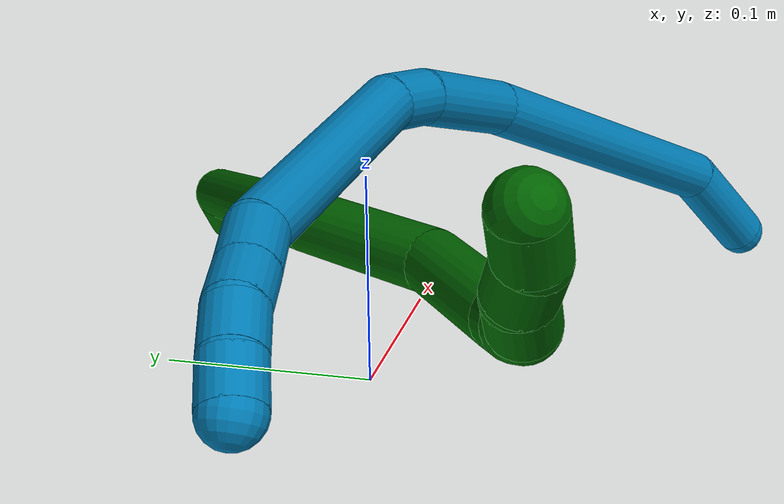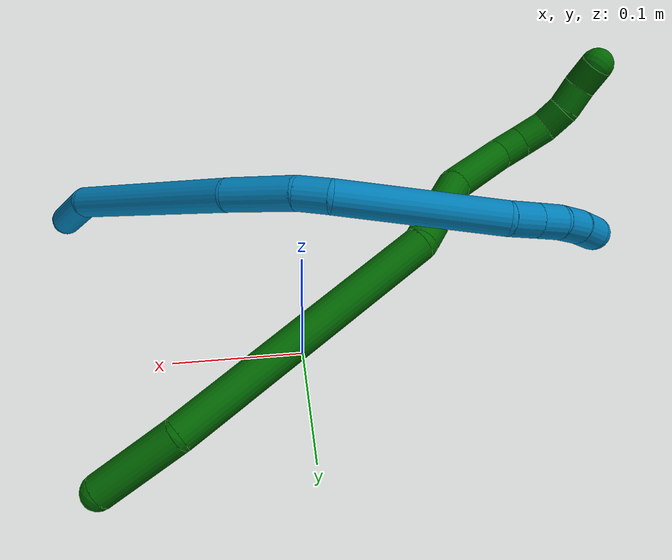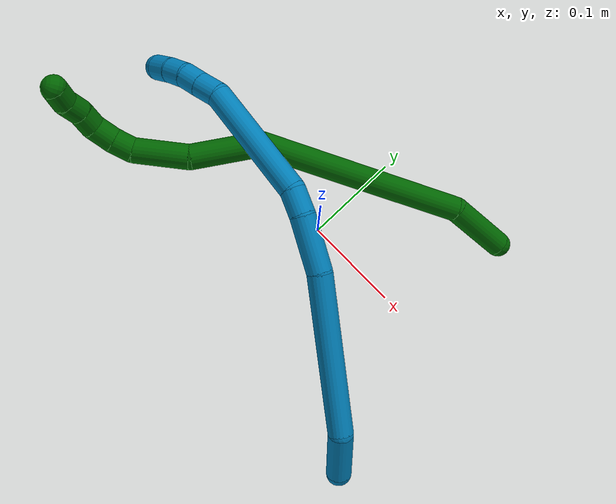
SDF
<sdf version="1.7">
 <world name="default">
  <model name="6">
   <static>0</static>
   <link name="6">
    <collision name="collision-cylinder-e_1_1_4">
     <pose>-0.009947 0.005174 0.030381 -0.16869 -0.312219 0.026612</pose>
     <geometry><cylinder><radius>0.0125</radius><length>0.064768</length></cylinder></geometry>
     <surface>
      <friction><ode><mu>1.16</mu><mu2>1.16</mu2><slip1>0</slip1><slip2>0</slip2></ode></friction>
      <contact><ode><kp>1e+06</kp><kd>1</kd><max_vel>0</max_vel><min_depth>0.001</min_depth></ode></contact>
     </surface>
    </collision>
    <visual name="visual-cylinder-e_1_1_4">
     <pose>-0.009947 0.005174 0.030381 -0.16869 -0.312219 0.026612</pose>
     <geometry><cylinder><radius>0.0125</radius><length>0.064768</length></cylinder></geometry>
     <material><ambient>0 0.392157 0.003922 1</ambient></material>
    </visual>
    <collision name="collision-cylinder-e_2_4_5">
     <pose>-0.049543 -0.012781 0.157176 0.235444 -0.290562 -0.034605</pose>
     <geometry><cylinder><radius>0.0125</radius><length>0.206976</length></cylinder></geometry>
     <surface>
      <friction><ode><mu>1.16</mu><mu2>1.16</mu2><slip1>0</slip1><slip2>0</slip2></ode></friction>
      <contact><ode><kp>1e+06</kp><kd>1</kd><max_vel>0</max_vel><min_depth>0.001</min_depth></ode></contact>
     </surface>
    </collision>
    <visual name="visual-cylinder-e_2_4_5">
     <pose>-0.049543 -0.012781 0.157176 0.235444 -0.290562 -0.034605</pose>
     <geometry><cylinder><radius>0.0125</radius><length>0.206976</length></cylinder></geometry>
     <material><ambient>0 0.392157 0.003922 1</ambient></material>
    </visual>
    <collision name="collision-cylinder-e_3_5_6">
     <pose>-0.079105 -0.05707 0.281297 0.652224 0.002487 0.000841</pose>
     <geometry><cylinder><radius>0.0125</radius><length>0.069724</length></cylinder></geometry>
     <surface>
      <friction><ode><mu>1.16</mu><mu2>1.16</mu2><slip1>0</slip1><slip2>0</slip2></ode></friction>
      <contact><ode><kp>1e+06</kp><kd>1</kd><max_vel>0</max_vel><min_depth>0.001</min_depth></ode></contact>
     </surface>
    </collision>
    <visual name="visual-cylinder-e_3_5_6">
     <pose>-0.079105 -0.05707 0.281297 0.652224 0.002487 0.000841</pose>
     <geometry><cylinder><radius>0.0125</radius><length>0.069724</length></cylinder></geometry>
     <material><ambient>0 0.392157 0.003922 1</ambient></material>
    </visual>
    <collision name="collision-cylinder-e_4_6_7">
     <pose>-0.087524 -0.091887 0.331395 0.547673 -0.313594 -0.088757</pose>
     <geometry><cylinder><radius>0.0125</radius><length>0.055147</length></cylinder></geometry>
     <surface>
      <friction><ode><mu>1.16</mu><mu2>1.16</mu2><slip1>0</slip1><slip2>0</slip2></ode></friction>
      <contact><ode><kp>1e+06</kp><kd>1</kd><max_vel>0</max_vel><min_depth>0.001</min_depth></ode></contact>
     </surface>
    </collision>
    <visual name="visual-cylinder-e_4_6_7">
     <pose>-0.087524 -0.091887 0.331395 0.547673 -0.313594 -0.088757</pose>
     <geometry><cylinder><radius>0.0125</radius><length>0.055147</length></cylinder></geometry>
     <material><ambient>0 0.392157 0.003922 1</ambient></material>
    </visual>
    <collision name="collision-cylinder-e_5_7_8">
     <pose>-0.100118 -0.106758 0.363324 0.126633 -0.402118 -0.025843</pose>
     <geometry><cylinder><radius>0.0125</radius><length>0.020892</length></cylinder></geometry>
     <surface>
      <friction><ode><mu>1.16</mu><mu2>1.16</mu2><slip1>0</slip1><slip2>0</slip2></ode></friction>
      <contact><ode><kp>1e+06</kp><kd>1</kd><max_vel>0</max_vel><min_depth>0.001</min_depth></ode></contact>
     </surface>
    </collision>
    <visual name="visual-cylinder-e_5_7_8">
     <pose>-0.100118 -0.106758 0.363324 0.126633 -0.402118 -0.025843</pose>
     <geometry><cylinder><radius>0.0125</radius><length>0.020892</length></cylinder></geometry>
     <material><ambient>0 0.392157 0.003922 1</ambient></material>
    </visual>
    <collision name="collision-cylinder-e_6_8_9">
     <pose>-0.108448 -0.107298 0.383084 -0.065877 -0.392423 0.013099</pose>
     <geometry><cylinder><radius>0.0125</radius><length>0.022179</length></cylinder></geometry>
     <surface>
      <friction><ode><mu>1.16</mu><mu2>1.16</mu2><slip1>0</slip1><slip2>0</slip2></ode></friction>
      <contact><ode><kp>1e+06</kp><kd>1</kd><max_vel>0</max_vel><min_depth>0.001</min_depth></ode></contact>
     </surface>
    </collision>
    <visual name="visual-cylinder-e_6_8_9">
     <pose>-0.108448 -0.107298 0.383084 -0.065877 -0.392423 0.013099</pose>
     <geometry><cylinder><radius>0.0125</radius><length>0.022179</length></cylinder></geometry>
     <material><ambient>0 0.392157 0.003922 1</ambient></material>
    </visual>
    <collision name="collision-cylinder-e_7_9_10">
     <pose>-0.114312 -0.101849 0.402046 -0.500101 -0.161587 0.041353</pose>
     <geometry><cylinder><radius>0.0125</radius><length>0.020177</length></cylinder></geometry>
     <surface>
      <friction><ode><mu>1.16</mu><mu2>1.16</mu2><slip1>0</slip1><slip2>0</slip2></ode></friction>
      <contact><ode><kp>1e+06</kp><kd>1</kd><max_vel>0</max_vel><min_depth>0.001</min_depth></ode></contact>
     </surface>
    </collision>
    <visual name="visual-cylinder-e_7_9_10">
     <pose>-0.114312 -0.101849 0.402046 -0.500101 -0.161587 0.041353</pose>
     <geometry><cylinder><radius>0.0125</radius><length>0.020177</length></cylinder></geometry>
     <material><ambient>0 0.392157 0.003922 1</ambient></material>
    </visual>
    <collision name="collision-cylinder-e_8_10_11">
     <pose>-0.115275 -0.093678 0.420215 -0.345618 0.065752 -0.011481</pose>
     <geometry><cylinder><radius>0.0125</radius><length>0.020093</length></cylinder></geometry>
     <surface>
      <friction><ode><mu>1.16</mu><mu2>1.16</mu2><slip1>0</slip1><slip2>0</slip2></ode></friction>
      <contact><ode><kp>1e+06</kp><kd>1</kd><max_vel>0</max_vel><min_depth>0.001</min_depth></ode></contact>
     </surface>
    </collision>
    <visual name="visual-cylinder-e_8_10_11">
     <pose>-0.115275 -0.093678 0.420215 -0.345618 0.065752 -0.011481</pose>
     <geometry><cylinder><radius>0.0125</radius><length>0.020093</length></cylinder></geometry>
     <material><ambient>0 0.392157 0.003922 1</ambient></material>
    </visual>
    <collision name="collision-cylinder-e_9_11_2">
     <pose>-0.11438 -0.084208 0.437615 -0.651362 0.023425 -0.007911</pose>
     <geometry><cylinder><radius>0.0125</radius><length>0.020044</length></cylinder></geometry>
     <surface>
      <friction><ode><mu>1.16</mu><mu2>1.16</mu2><slip1>0</slip1><slip2>0</slip2></ode></friction>
      <contact><ode><kp>1e+06</kp><kd>1</kd><max_vel>0</max_vel><min_depth>0.001</min_depth></ode></contact>
     </surface>
    </collision>
    <visual name="visual-cylinder-e_9_11_2">
     <pose>-0.11438 -0.084208 0.437615 -0.651362 0.023425 -0.007911</pose>
     <geometry><cylinder><radius>0.0125</radius><length>0.020044</length></cylinder></geometry>
     <material><ambient>0 0.392157 0.003922 1</ambient></material>
    </visual>
    <collision name="collision-sphere-2">
     <pose>-0.114145 -0.078133 0.445583 0 -0 0</pose>
     <geometry><sphere><radius>0.0125</radius></sphere></geometry>
     <surface>
      <friction><ode><mu>1.16</mu><mu2>1.16</mu2><slip1>0</slip1><slip2>0</slip2></ode></friction>
      <contact><ode><kp>1e+06</kp><kd>1</kd><max_vel>0</max_vel><min_depth>0.001</min_depth></ode></contact>
     </surface>
    </collision>
    <visual name="visual-sphere-2">
     <pose>-0.114145 -0.078133 0.445583 0 -0 0</pose>
     <geometry><sphere><radius>0.0125</radius></sphere></geometry>
     <material><ambient>0 0.392157 0.003922 1</ambient></material>
    </visual>
    <collision name="collision-sphere-11">
     <pose>-0.114614 -0.090282 0.429647 0 -0 0</pose>
     <geometry><sphere><radius>0.0125</radius></sphere></geometry>
     <surface>
      <friction><ode><mu>1.16</mu><mu2>1.16</mu2><slip1>0</slip1><slip2>0</slip2></ode></friction>
      <contact><ode><kp>1e+06</kp><kd>1</kd><max_vel>0</max_vel><min_depth>0.001</min_depth></ode></contact>
     </surface>
    </collision>
    <visual name="visual-sphere-11">
     <pose>-0.114614 -0.090282 0.429647 0 -0 0</pose>
     <geometry><sphere><radius>0.0125</radius></sphere></geometry>
     <material><ambient>0 0.392157 0.003922 1</ambient></material>
    </visual>
    <collision name="collision-sphere-10">
     <pose>-0.115935 -0.097074 0.410784 0 -0 0</pose>
     <geometry><sphere><radius>0.0125</radius></sphere></geometry>
     <surface>
      <friction><ode><mu>1.16</mu><mu2>1.16</mu2><slip1>0</slip1><slip2>0</slip2></ode></friction>
      <contact><ode><kp>1e+06</kp><kd>1</kd><max_vel>0</max_vel><min_depth>0.001</min_depth></ode></contact>
     </surface>
    </collision>
    <visual name="visual-sphere-10">
     <pose>-0.115935 -0.097074 0.410784 0 -0 0</pose>
     <geometry><sphere><radius>0.0125</radius></sphere></geometry>
     <material><ambient>0 0.392157 0.003922 1</ambient></material>
    </visual>
    <collision name="collision-sphere-9">
     <pose>-0.112688 -0.106623 0.393309 0 -0 0</pose>
     <geometry><sphere><radius>0.0125</radius></sphere></geometry>
     <surface>
      <friction><ode><mu>1.16</mu><mu2>1.16</mu2><slip1>0</slip1><slip2>0</slip2></ode></friction>
      <contact><ode><kp>1e+06</kp><kd>1</kd><max_vel>0</max_vel><min_depth>0.001</min_depth></ode></contact>
     </surface>
    </collision>
    <visual name="visual-sphere-9">
     <pose>-0.112688 -0.106623 0.393309 0 -0 0</pose>
     <geometry><sphere><radius>0.0125</radius></sphere></geometry>
     <material><ambient>0 0.392157 0.003922 1</ambient></material>
    </visual>
    <collision name="collision-sphere-4">
     <pose>-0.019895 0.010348 0.060761 0 -0 0</pose>
     <geometry><sphere><radius>0.0125</radius></sphere></geometry>
     <surface>
      <friction><ode><mu>1.16</mu><mu2>1.16</mu2><slip1>0</slip1><slip2>0</slip2></ode></friction>
      <contact><ode><kp>1e+06</kp><kd>1</kd><max_vel>0</max_vel><min_depth>0.001</min_depth></ode></contact>
     </surface>
    </collision>
    <visual name="visual-sphere-4">
     <pose>-0.019895 0.010348 0.060761 0 -0 0</pose>
     <geometry><sphere><radius>0.0125</radius></sphere></geometry>
     <material><ambient>0 0.392157 0.003922 1</ambient></material>
    </visual>
    <collision name="collision-sphere-1">
     <geometry><sphere><radius>0.0125</radius></sphere></geometry>
     <surface>
      <friction><ode><mu>1.16</mu><mu2>1.16</mu2><slip1>0</slip1><slip2>0</slip2></ode></friction>
      <contact><ode><kp>1e+06</kp><kd>1</kd><max_vel>0</max_vel><min_depth>0.001</min_depth></ode></contact>
     </surface>
    </collision>
    <visual name="visual-sphere-1">
     <geometry><sphere><radius>0.0125</radius></sphere></geometry>
     <material><ambient>0 0.392157 0.003922 1</ambient></material>
    </visual>
    <collision name="collision-sphere-8">
     <pose>-0.104207 -0.107972 0.37286 0 -0 0</pose>
     <geometry><sphere><radius>0.0125</radius></sphere></geometry>
     <surface>
      <friction><ode><mu>1.16</mu><mu2>1.16</mu2><slip1>0</slip1><slip2>0</slip2></ode></friction>
      <contact><ode><kp>1e+06</kp><kd>1</kd><max_vel>0</max_vel><min_depth>0.001</min_depth></ode></contact>
     </surface>
    </collision>
    <visual name="visual-sphere-8">
     <pose>-0.104207 -0.107972 0.37286 0 -0 0</pose>
     <geometry><sphere><radius>0.0125</radius></sphere></geometry>
     <material><ambient>0 0.392157 0.003922 1</ambient></material>
    </visual>
    <collision name="collision-sphere-5">
     <pose>-0.079192 -0.03591 0.253591 0 -0 0</pose>
     <geometry><sphere><radius>0.0125</radius></sphere></geometry>
     <surface>
      <friction><ode><mu>1.16</mu><mu2>1.16</mu2><slip1>0</slip1><slip2>0</slip2></ode></friction>
      <contact><ode><kp>1e+06</kp><kd>1</kd><max_vel>0</max_vel><min_depth>0.001</min_depth></ode></contact>
     </surface>
    </collision>
    <visual name="visual-sphere-5">
     <pose>-0.079192 -0.03591 0.253591 0 -0 0</pose>
     <geometry><sphere><radius>0.0125</radius></sphere></geometry>
     <material><ambient>0 0.392157 0.003922 1</ambient></material>
    </visual>
    <collision name="collision-sphere-6">
     <pose>-0.079018 -0.078229 0.309003 0 -0 0</pose>
     <geometry><sphere><radius>0.0125</radius></sphere></geometry>
     <surface>
      <friction><ode><mu>1.16</mu><mu2>1.16</mu2><slip1>0</slip1><slip2>0</slip2></ode></friction>
      <contact><ode><kp>1e+06</kp><kd>1</kd><max_vel>0</max_vel><min_depth>0.001</min_depth></ode></contact>
     </surface>
    </collision>
    <visual name="visual-sphere-6">
     <pose>-0.079018 -0.078229 0.309003 0 -0 0</pose>
     <geometry><sphere><radius>0.0125</radius></sphere></geometry>
     <material><ambient>0 0.392157 0.003922 1</ambient></material>
    </visual>
    <collision name="collision-sphere-7">
     <pose>-0.09603 -0.105544 0.353788 0 -0 0</pose>
     <geometry><sphere><radius>0.0125</radius></sphere></geometry>
     <surface>
      <friction><ode><mu>1.16</mu><mu2>1.16</mu2><slip1>0</slip1><slip2>0</slip2></ode></friction>
      <contact><ode><kp>1e+06</kp><kd>1</kd><max_vel>0</max_vel><min_depth>0.001</min_depth></ode></contact>
     </surface>
    </collision>
    <visual name="visual-sphere-7">
     <pose>-0.09603 -0.105544 0.353788 0 -0 0</pose>
     <geometry><sphere><radius>0.0125</radius></sphere></geometry>
     <material><ambient>0 0.392157 0.003922 1</ambient></material>
    </visual>
    <inertial>
     <pose>-0.065306 -0.043184 0.227604 0 -0 0</pose>
     <mass>0.5</mass>
     <inertia>
      <ixx>0.000759</ixx>
      <ixy>0</ixy>
      <ixz>0</ixz>
      <iyy>0.000767</iyy>
      <iyz>0</iyz>
      <izz>0.000451</izz>
     </inertia>
    </inertial>
   </link>
   <pose>0.142114 0.119079 0.021682 0.885055 -0.443439 -0.55296</pose>
  </model>
  <model name="9">
   <static>0</static>
   <link name="9">
    <collision name="collision-cylinder-e_1_1_4">
     <pose>-0.017808 0.018395 0.008062 -1.15775 -0.725415 0.486238</pose>
     <geometry><cylinder><radius>0.0125</radius><length>0.053685</length></cylinder></geometry>
     <surface>
      <friction><ode><mu>1.16</mu><mu2>1.16</mu2><slip1>0</slip1><slip2>0</slip2></ode></friction>
      <contact><ode><kp>1e+06</kp><kd>1</kd><max_vel>0</max_vel><min_depth>0.001</min_depth></ode></contact>
     </surface>
    </collision>
    <visual name="visual-cylinder-e_1_1_4">
     <pose>-0.017808 0.018395 0.008062 -1.15775 -0.725415 0.486238</pose>
     <geometry><cylinder><radius>0.0125</radius><length>0.053685</length></cylinder></geometry>
     <material><ambient>0 0.490196 0.709804 1</ambient></material>
    </visual>
    <collision name="collision-cylinder-e_2_4_5">
     <pose>-0.088883 0.09606 0.007526 -1.71484 -0.726929 0.828201</pose>
     <geometry><cylinder><radius>0.0125</radius><length>0.160302</length></cylinder></geometry>
     <surface>
      <friction><ode><mu>1.16</mu><mu2>1.16</mu2><slip1>0</slip1><slip2>0</slip2></ode></friction>
      <contact><ode><kp>1e+06</kp><kd>1</kd><max_vel>0</max_vel><min_depth>0.001</min_depth></ode></contact>
     </surface>
    </collision>
    <visual name="visual-cylinder-e_2_4_5">
     <pose>-0.088883 0.09606 0.007526 -1.71484 -0.726929 0.828201</pose>
     <geometry><cylinder><radius>0.0125</radius><length>0.160302</length></cylinder></geometry>
     <material><ambient>0 0.490196 0.709804 1</ambient></material>
    </visual>
    <collision name="collision-cylinder-e_3_5_6">
     <pose>-0.161967 0.173146 -0.008444 -1.96321 -0.799088 1.12689</pose>
     <geometry><cylinder><radius>0.0125</radius><length>0.055298</length></cylinder></geometry>
     <surface>
      <friction><ode><mu>1.16</mu><mu2>1.16</mu2><slip1>0</slip1><slip2>0</slip2></ode></friction>
      <contact><ode><kp>1e+06</kp><kd>1</kd><max_vel>0</max_vel><min_depth>0.001</min_depth></ode></contact>
     </surface>
    </collision>
    <visual name="visual-cylinder-e_3_5_6">
     <pose>-0.161967 0.173146 -0.008444 -1.96321 -0.799088 1.12689</pose>
     <geometry><cylinder><radius>0.0125</radius><length>0.055298</length></cylinder></geometry>
     <material><ambient>0 0.490196 0.709804 1</ambient></material>
    </visual>
    <collision name="collision-cylinder-e_4_6_7">
     <pose>-0.190269 0.198452 -0.021546 -2.22369 -0.732799 1.32056</pose>
     <geometry><cylinder><radius>0.0125</radius><length>0.025371</length></cylinder></geometry>
     <surface>
      <friction><ode><mu>1.16</mu><mu2>1.16</mu2><slip1>0</slip1><slip2>0</slip2></ode></friction>
      <contact><ode><kp>1e+06</kp><kd>1</kd><max_vel>0</max_vel><min_depth>0.001</min_depth></ode></contact>
     </surface>
    </collision>
    <visual name="visual-cylinder-e_4_6_7">
     <pose>-0.190269 0.198452 -0.021546 -2.22369 -0.732799 1.32056</pose>
     <geometry><cylinder><radius>0.0125</radius><length>0.025371</length></cylinder></geometry>
     <material><ambient>0 0.490196 0.709804 1</ambient></material>
    </visual>
    <collision name="collision-cylinder-e_5_7_8">
     <pose>-0.23811 0.226106 -0.068678 -2.68838 -0.707128 2.0248</pose>
     <geometry><cylinder><radius>0.0125</radius><length>0.121154</length></cylinder></geometry>
     <surface>
      <friction><ode><mu>1.16</mu><mu2>1.16</mu2><slip1>0</slip1><slip2>0</slip2></ode></friction>
      <contact><ode><kp>1e+06</kp><kd>1</kd><max_vel>0</max_vel><min_depth>0.001</min_depth></ode></contact>
     </surface>
    </collision>
    <visual name="visual-cylinder-e_5_7_8">
     <pose>-0.23811 0.226106 -0.068678 -2.68838 -0.707128 2.0248</pose>
     <geometry><cylinder><radius>0.0125</radius><length>0.121154</length></cylinder></geometry>
     <material><ambient>0 0.490196 0.709804 1</ambient></material>
    </visual>
    <collision name="collision-cylinder-e_6_8_9">
     <pose>-0.284501 0.246379 -0.119371 -3.12987 -0.648252 3.10669</pose>
     <geometry><cylinder><radius>0.0125</radius><length>0.023309</length></cylinder></geometry>
     <surface>
      <friction><ode><mu>1.16</mu><mu2>1.16</mu2><slip1>0</slip1><slip2>0</slip2></ode></friction>
      <contact><ode><kp>1e+06</kp><kd>1</kd><max_vel>0</max_vel><min_depth>0.001</min_depth></ode></contact>
     </surface>
    </collision>
    <visual name="visual-cylinder-e_6_8_9">
     <pose>-0.284501 0.246379 -0.119371 -3.12987 -0.648252 3.10669</pose>
     <geometry><cylinder><radius>0.0125</radius><length>0.023309</length></cylinder></geometry>
     <material><ambient>0 0.490196 0.709804 1</ambient></material>
    </visual>
    <collision name="collision-cylinder-e_7_9_10">
     <pose>-0.297727 0.246846 -0.136715 -3.09724 -0.654732 3.01115</pose>
     <geometry><cylinder><radius>0.0125</radius><length>0.020329</length></cylinder></geometry>
     <surface>
      <friction><ode><mu>1.16</mu><mu2>1.16</mu2><slip1>0</slip1><slip2>0</slip2></ode></friction>
      <contact><ode><kp>1e+06</kp><kd>1</kd><max_vel>0</max_vel><min_depth>0.001</min_depth></ode></contact>
     </surface>
    </collision>
    <visual name="visual-cylinder-e_7_9_10">
     <pose>-0.297727 0.246846 -0.136715 -3.09724 -0.654732 3.01115</pose>
     <geometry><cylinder><radius>0.0125</radius><length>0.020329</length></cylinder></geometry>
     <material><ambient>0 0.490196 0.709804 1</ambient></material>
    </visual>
    <collision name="collision-cylinder-e_8_10_11">
     <pose>-0.308511 0.246142 -0.153769 3.0242 -0.469202 -2.65942</pose>
     <geometry><cylinder><radius>0.0125</radius><length>0.02032</length></cylinder></geometry>
     <surface>
      <friction><ode><mu>1.16</mu><mu2>1.16</mu2><slip1>0</slip1><slip2>0</slip2></ode></friction>
      <contact><ode><kp>1e+06</kp><kd>1</kd><max_vel>0</max_vel><min_depth>0.001</min_depth></ode></contact>
     </surface>
    </collision>
    <visual name="visual-cylinder-e_8_10_11">
     <pose>-0.308511 0.246142 -0.153769 3.0242 -0.469202 -2.65942</pose>
     <geometry><cylinder><radius>0.0125</radius><length>0.02032</length></cylinder></geometry>
     <material><ambient>0 0.490196 0.709804 1</ambient></material>
    </visual>
    <collision name="collision-cylinder-e_9_11_2">
     <pose>-0.31643 0.243507 -0.172193 2.97619 -0.334886 -2.22969</pose>
     <geometry><cylinder><radius>0.0125</radius><length>0.020232</length></cylinder></geometry>
     <surface>
      <friction><ode><mu>1.16</mu><mu2>1.16</mu2><slip1>0</slip1><slip2>0</slip2></ode></friction>
      <contact><ode><kp>1e+06</kp><kd>1</kd><max_vel>0</max_vel><min_depth>0.001</min_depth></ode></contact>
     </surface>
    </collision>
    <visual name="visual-cylinder-e_9_11_2">
     <pose>-0.31643 0.243507 -0.172193 2.97619 -0.334886 -2.22969</pose>
     <geometry><cylinder><radius>0.0125</radius><length>0.020232</length></cylinder></geometry>
     <material><ambient>0 0.490196 0.709804 1</ambient></material>
    </visual>
    <collision name="collision-sphere-2">
     <pose>-0.319754 0.241934 -0.181616 0 -0 0</pose>
     <geometry><sphere><radius>0.0125</radius></sphere></geometry>
     <surface>
      <friction><ode><mu>1.16</mu><mu2>1.16</mu2><slip1>0</slip1><slip2>0</slip2></ode></friction>
      <contact><ode><kp>1e+06</kp><kd>1</kd><max_vel>0</max_vel><min_depth>0.001</min_depth></ode></contact>
     </surface>
    </collision>
    <visual name="visual-sphere-2">
     <pose>-0.319754 0.241934 -0.181616 0 -0 0</pose>
     <geometry><sphere><radius>0.0125</radius></sphere></geometry>
     <material><ambient>0 0.490196 0.709804 1</ambient></material>
    </visual>
    <collision name="collision-sphere-11">
     <pose>-0.313105 0.245081 -0.162769 0 -0 0</pose>
     <geometry><sphere><radius>0.0125</radius></sphere></geometry>
     <surface>
      <friction><ode><mu>1.16</mu><mu2>1.16</mu2><slip1>0</slip1><slip2>0</slip2></ode></friction>
      <contact><ode><kp>1e+06</kp><kd>1</kd><max_vel>0</max_vel><min_depth>0.001</min_depth></ode></contact>
     </surface>
    </collision>
    <visual name="visual-sphere-11">
     <pose>-0.313105 0.245081 -0.162769 0 -0 0</pose>
     <geometry><sphere><radius>0.0125</radius></sphere></geometry>
     <material><ambient>0 0.490196 0.709804 1</ambient></material>
    </visual>
    <collision name="collision-sphere-10">
     <pose>-0.303917 0.247203 -0.14477 0 -0 0</pose>
     <geometry><sphere><radius>0.0125</radius></sphere></geometry>
     <surface>
      <friction><ode><mu>1.16</mu><mu2>1.16</mu2><slip1>0</slip1><slip2>0</slip2></ode></friction>
      <contact><ode><kp>1e+06</kp><kd>1</kd><max_vel>0</max_vel><min_depth>0.001</min_depth></ode></contact>
     </surface>
    </collision>
    <visual name="visual-sphere-10">
     <pose>-0.303917 0.247203 -0.14477 0 -0 0</pose>
     <geometry><sphere><radius>0.0125</radius></sphere></geometry>
     <material><ambient>0 0.490196 0.709804 1</ambient></material>
    </visual>
    <collision name="collision-sphere-9">
     <pose>-0.291538 0.246488 -0.12866 0 -0 0</pose>
     <geometry><sphere><radius>0.0125</radius></sphere></geometry>
     <surface>
      <friction><ode><mu>1.16</mu><mu2>1.16</mu2><slip1>0</slip1><slip2>0</slip2></ode></friction>
      <contact><ode><kp>1e+06</kp><kd>1</kd><max_vel>0</max_vel><min_depth>0.001</min_depth></ode></contact>
     </surface>
    </collision>
    <visual name="visual-sphere-9">
     <pose>-0.291538 0.246488 -0.12866 0 -0 0</pose>
     <geometry><sphere><radius>0.0125</radius></sphere></geometry>
     <material><ambient>0 0.490196 0.709804 1</ambient></material>
    </visual>
    <collision name="collision-sphere-4">
     <pose>-0.035617 0.03679 0.016123 0 -0 0</pose>
     <geometry><sphere><radius>0.0125</radius></sphere></geometry>
     <surface>
      <friction><ode><mu>1.16</mu><mu2>1.16</mu2><slip1>0</slip1><slip2>0</slip2></ode></friction>
      <contact><ode><kp>1e+06</kp><kd>1</kd><max_vel>0</max_vel><min_depth>0.001</min_depth></ode></contact>
     </surface>
    </collision>
    <visual name="visual-sphere-4">
     <pose>-0.035617 0.03679 0.016123 0 -0 0</pose>
     <geometry><sphere><radius>0.0125</radius></sphere></geometry>
     <material><ambient>0 0.490196 0.709804 1</ambient></material>
    </visual>
    <collision name="collision-sphere-1">
     <geometry><sphere><radius>0.0125</radius></sphere></geometry>
     <surface>
      <friction><ode><mu>1.16</mu><mu2>1.16</mu2><slip1>0</slip1><slip2>0</slip2></ode></friction>
      <contact><ode><kp>1e+06</kp><kd>1</kd><max_vel>0</max_vel><min_depth>0.001</min_depth></ode></contact>
     </surface>
    </collision>
    <visual name="visual-sphere-1">
     <geometry><sphere><radius>0.0125</radius></sphere></geometry>
     <material><ambient>0 0.490196 0.709804 1</ambient></material>
    </visual>
    <collision name="collision-sphere-8">
     <pose>-0.277464 0.24627 -0.110081 0 -0 0</pose>
     <geometry><sphere><radius>0.0125</radius></sphere></geometry>
     <surface>
      <friction><ode><mu>1.16</mu><mu2>1.16</mu2><slip1>0</slip1><slip2>0</slip2></ode></friction>
      <contact><ode><kp>1e+06</kp><kd>1</kd><max_vel>0</max_vel><min_depth>0.001</min_depth></ode></contact>
     </surface>
    </collision>
    <visual name="visual-sphere-8">
     <pose>-0.277464 0.24627 -0.110081 0 -0 0</pose>
     <geometry><sphere><radius>0.0125</radius></sphere></geometry>
     <material><ambient>0 0.490196 0.709804 1</ambient></material>
    </visual>
    <collision name="collision-sphere-5">
     <pose>-0.14215 0.15533 -0.001071 0 -0 0</pose>
     <geometry><sphere><radius>0.0125</radius></sphere></geometry>
     <surface>
      <friction><ode><mu>1.16</mu><mu2>1.16</mu2><slip1>0</slip1><slip2>0</slip2></ode></friction>
      <contact><ode><kp>1e+06</kp><kd>1</kd><max_vel>0</max_vel><min_depth>0.001</min_depth></ode></contact>
     </surface>
    </collision>
    <visual name="visual-sphere-5">
     <pose>-0.14215 0.15533 -0.001071 0 -0 0</pose>
     <geometry><sphere><radius>0.0125</radius></sphere></geometry>
     <material><ambient>0 0.490196 0.709804 1</ambient></material>
    </visual>
    <collision name="collision-sphere-6">
     <pose>-0.181783 0.190962 -0.015818 0 -0 0</pose>
     <geometry><sphere><radius>0.0125</radius></sphere></geometry>
     <surface>
      <friction><ode><mu>1.16</mu><mu2>1.16</mu2><slip1>0</slip1><slip2>0</slip2></ode></friction>
      <contact><ode><kp>1e+06</kp><kd>1</kd><max_vel>0</max_vel><min_depth>0.001</min_depth></ode></contact>
     </surface>
    </collision>
    <visual name="visual-sphere-6">
     <pose>-0.181783 0.190962 -0.015818 0 -0 0</pose>
     <geometry><sphere><radius>0.0125</radius></sphere></geometry>
     <material><ambient>0 0.490196 0.709804 1</ambient></material>
    </visual>
    <collision name="collision-sphere-7">
     <pose>-0.198755 0.205941 -0.027274 0 -0 0</pose>
     <geometry><sphere><radius>0.0125</radius></sphere></geometry>
     <surface>
      <friction><ode><mu>1.16</mu><mu2>1.16</mu2><slip1>0</slip1><slip2>0</slip2></ode></friction>
      <contact><ode><kp>1e+06</kp><kd>1</kd><max_vel>0</max_vel><min_depth>0.001</min_depth></ode></contact>
     </surface>
    </collision>
    <visual name="visual-sphere-7">
     <pose>-0.198755 0.205941 -0.027274 0 -0 0</pose>
     <geometry><sphere><radius>0.0125</radius></sphere></geometry>
     <material><ambient>0 0.490196 0.709804 1</ambient></material>
    </visual>
    <inertial>
     <pose>-0.166382 0.158157 -0.03973 0 -0 0</pose>
     <mass>0.5</mass>
     <inertia><ixx>0.000424</ixx><ixy>0</ixy><ixz>0</ixz><iyy>0.00059</iyy><iyz>0</iyz><izz>1.3e-05</izz></inertia>
    </inertial>
   </link>
   <pose>0.193893 -0.16024 0.017171 0.189227 0.608857 0.337384</pose>
  </model>
 </world>
</sdf>
